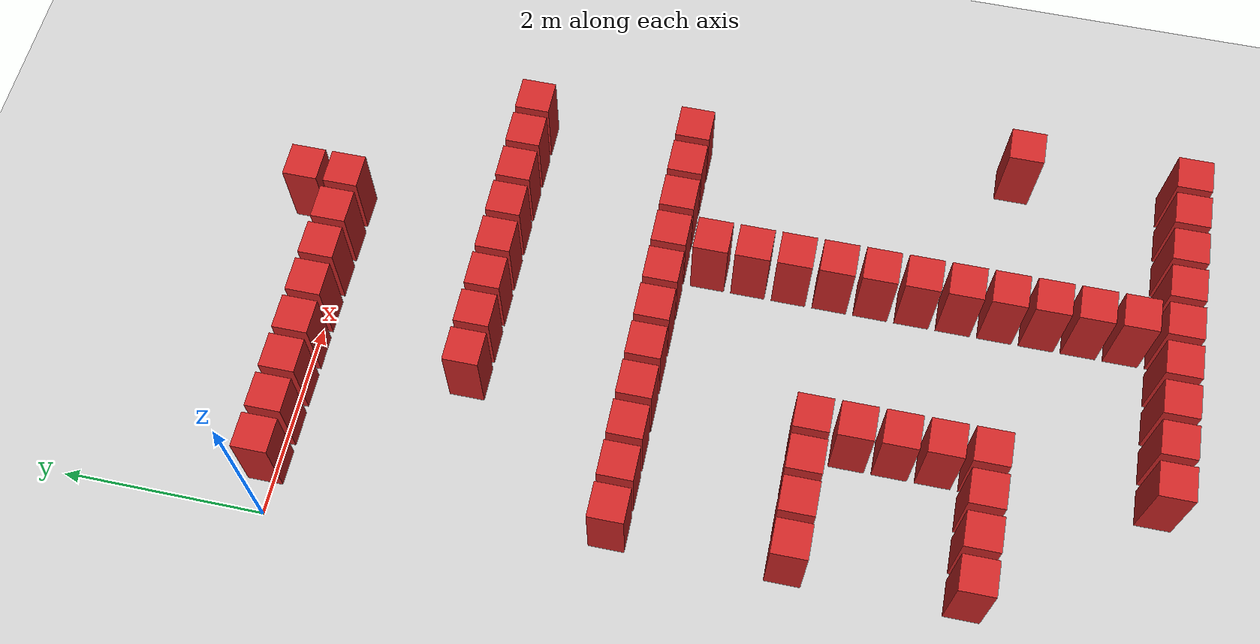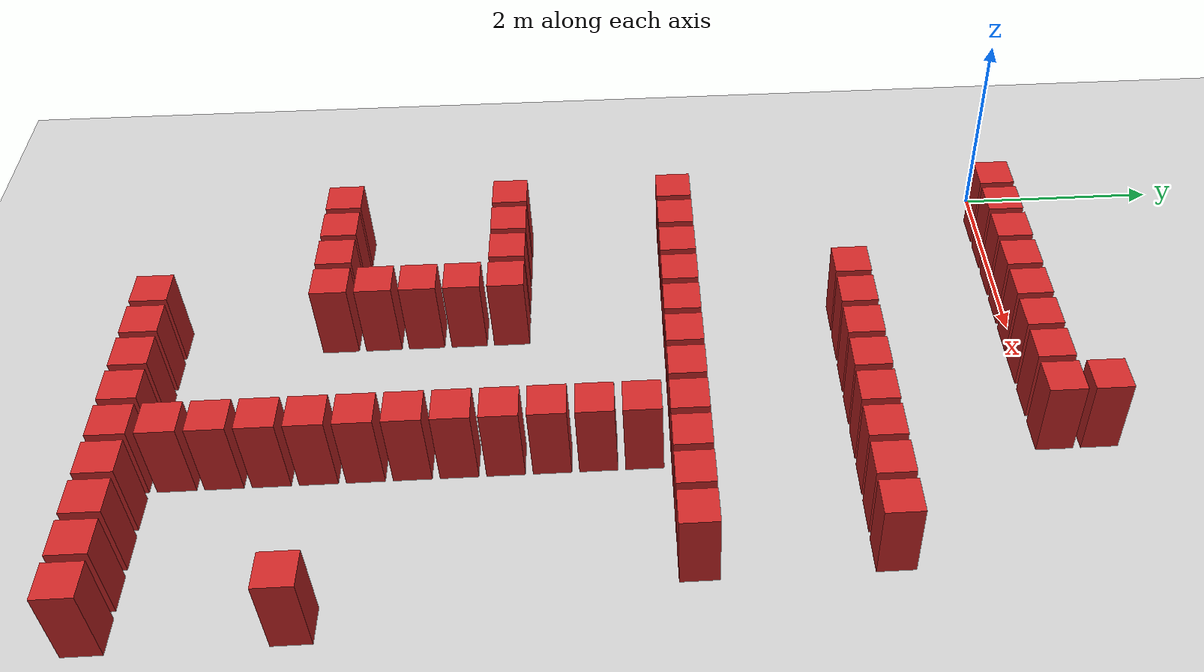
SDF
<sdf version="1.6">
 <world name="default">
  <model name="ground_plane">
   <static>1</static>
   <link name="link">
    <collision name="collision">
     <geometry><plane><normal>0 0 1</normal><size>100 100</size></plane></geometry>
     <surface><friction><ode><mu>100</mu><mu2>50</mu2></ode></friction></surface>
    </collision>
    <visual name="visual">
     <cast_shadows>0</cast_shadows>
     <geometry><plane><normal>0 0 1</normal><size>100 100</size></plane></geometry>
     <material>
      <script><uri>file://media/materials/scripts/gazebo.material</uri><name>Gazebo/Grey</name></script>
     </material>
    </visual>
   </link>
  </model>
  <model name="box_obstacle252">
   <static>0</static>
   <link name="link">
    <pose>0 0 0.1 0 -0 0</pose>
    <inertial>
     <mass>100</mass>
     <inertia>
      <ixx>0.166667</ixx>
      <ixy>0</ixy>
      <ixz>0</ixz>
      <iyy>0.166667</iyy>
      <iyz>0</iyz>
      <izz>0.166667</izz>
     </inertia>
    </inertial>
    <collision name="collision"><geometry><box><size>0.35 0.35 0.8</size></box></geometry></collision>
    <visual name="visual">
     <geometry><box><size>0.35 0.35 0.8</size></box></geometry>
     <material>
      <script><name>Gazebo/Red</name><uri>file://media/materials/scripts/gazebo.material</uri></script>
     </material>
    </visual>
   </link>
   <pose>0.499661 -6.63994 0.300001 -1e-06 1.7e-05 0.000735</pose>
  </model>
  <model name="box_obstacle253">
   <static>0</static>
   <link name="link">
    <pose>0 0 0.1 0 -0 0</pose>
    <inertial>
     <mass>100</mass>
     <inertia>
      <ixx>0.166667</ixx>
      <ixy>0</ixy>
      <ixz>0</ixz>
      <iyy>0.166667</iyy>
      <iyz>0</iyz>
      <izz>0.166667</izz>
     </inertia>
    </inertial>
    <collision name="collision"><geometry><box><size>0.35 0.35 0.8</size></box></geometry></collision>
    <visual name="visual">
     <geometry><box><size>0.35 0.35 0.8</size></box></geometry>
     <material>
      <script><name>Gazebo/Red</name><uri>file://media/materials/scripts/gazebo.material</uri></script>
     </material>
    </visual>
   </link>
   <pose>0.499661 -4.95994 0.300001 -1e-06 1.7e-05 0.000735</pose>
  </model>
  <model name="box_obstacle254">
   <static>0</static>
   <link name="link">
    <pose>0 0 0.1 0 -0 0</pose>
    <inertial>
     <mass>100</mass>
     <inertia>
      <ixx>0.166667</ixx>
      <ixy>0</ixy>
      <ixz>0</ixz>
      <iyy>0.166667</iyy>
      <iyz>0</iyz>
      <izz>0.166667</izz>
     </inertia>
    </inertial>
    <collision name="collision"><geometry><box><size>0.35 0.35 0.8</size></box></geometry></collision>
    <visual name="visual">
     <geometry><box><size>0.35 0.35 0.8</size></box></geometry>
     <material>
      <script><name>Gazebo/Red</name><uri>file://media/materials/scripts/gazebo.material</uri></script>
     </material>
    </visual>
   </link>
   <pose>0.499661 -3.27994 0.300001 -1e-06 1.7e-05 0.000735</pose>
  </model>
  <model name="box_obstacle255">
   <static>0</static>
   <link name="link">
    <pose>0 0 0.1 0 -0 0</pose>
    <inertial>
     <mass>100</mass>
     <inertia>
      <ixx>0.166667</ixx>
      <ixy>0</ixy>
      <ixz>0</ixz>
      <iyy>0.166667</iyy>
      <iyz>0</iyz>
      <izz>0.166667</izz>
     </inertia>
    </inertial>
    <collision name="collision"><geometry><box><size>0.35 0.35 0.8</size></box></geometry></collision>
    <visual name="visual">
     <geometry><box><size>0.35 0.35 0.8</size></box></geometry>
     <material>
      <script><name>Gazebo/Red</name><uri>file://media/materials/scripts/gazebo.material</uri></script>
     </material>
    </visual>
   </link>
   <pose>0.499661 0.080061 0.300001 -1e-06 1.7e-05 0.000735</pose>
  </model>
  <model name="box_obstacle258">
   <static>0</static>
   <link name="link">
    <pose>0 0 0.1 0 -0 0</pose>
    <inertial>
     <mass>100</mass>
     <inertia>
      <ixx>0.166667</ixx>
      <ixy>0</ixy>
      <ixz>0</ixz>
      <iyy>0.166667</iyy>
      <iyz>0</iyz>
      <izz>0.166667</izz>
     </inertia>
    </inertial>
    <collision name="collision"><geometry><box><size>0.35 0.35 0.8</size></box></geometry></collision>
    <visual name="visual">
     <geometry><box><size>0.35 0.35 0.8</size></box></geometry>
     <material>
      <script><name>Gazebo/Red</name><uri>file://media/materials/scripts/gazebo.material</uri></script>
     </material>
    </visual>
   </link>
   <pose>0.919661 -6.63994 0.300001 -1e-06 1.7e-05 0.000735</pose>
  </model>
  <model name="box_obstacle259">
   <static>0</static>
   <link name="link">
    <pose>0 0 0.1 0 -0 0</pose>
    <inertial>
     <mass>100</mass>
     <inertia>
      <ixx>0.166667</ixx>
      <ixy>0</ixy>
      <ixz>0</ixz>
      <iyy>0.166667</iyy>
      <iyz>0</iyz>
      <izz>0.166667</izz>
     </inertia>
    </inertial>
    <collision name="collision"><geometry><box><size>0.35 0.35 0.8</size></box></geometry></collision>
    <visual name="visual">
     <geometry><box><size>0.35 0.35 0.8</size></box></geometry>
     <material>
      <script><name>Gazebo/Red</name><uri>file://media/materials/scripts/gazebo.material</uri></script>
     </material>
    </visual>
   </link>
   <pose>0.919661 -4.95994 0.300001 -1e-06 1.7e-05 0.000735</pose>
  </model>
  <model name="box_obstacle260">
   <static>0</static>
   <link name="link">
    <pose>0 0 0.1 0 -0 0</pose>
    <inertial>
     <mass>100</mass>
     <inertia>
      <ixx>0.166667</ixx>
      <ixy>0</ixy>
      <ixz>0</ixz>
      <iyy>0.166667</iyy>
      <iyz>0</iyz>
      <izz>0.166667</izz>
     </inertia>
    </inertial>
    <collision name="collision"><geometry><box><size>0.35 0.35 0.8</size></box></geometry></collision>
    <visual name="visual">
     <geometry><box><size>0.35 0.35 0.8</size></box></geometry>
     <material>
      <script><name>Gazebo/Red</name><uri>file://media/materials/scripts/gazebo.material</uri></script>
     </material>
    </visual>
   </link>
   <pose>0.919661 -3.27994 0.300001 -1e-06 1.7e-05 0.000735</pose>
  </model>
  <model name="box_obstacle261">
   <static>0</static>
   <link name="link">
    <pose>0 0 0.1 0 -0 0</pose>
    <inertial>
     <mass>100</mass>
     <inertia>
      <ixx>0.166667</ixx>
      <ixy>0</ixy>
      <ixz>0</ixz>
      <iyy>0.166667</iyy>
      <iyz>0</iyz>
      <izz>0.166667</izz>
     </inertia>
    </inertial>
    <collision name="collision"><geometry><box><size>0.35 0.35 0.8</size></box></geometry></collision>
    <visual name="visual">
     <geometry><box><size>0.35 0.35 0.8</size></box></geometry>
     <material>
      <script><name>Gazebo/Red</name><uri>file://media/materials/scripts/gazebo.material</uri></script>
     </material>
    </visual>
   </link>
   <pose>0.919661 0.080061 0.300001 -1e-06 1.7e-05 0.000735</pose>
  </model>
  <model name="box_obstacle264">
   <static>0</static>
   <link name="link">
    <pose>0 0 0.1 0 -0 0</pose>
    <inertial>
     <mass>100</mass>
     <inertia>
      <ixx>0.166667</ixx>
      <ixy>0</ixy>
      <ixz>0</ixz>
      <iyy>0.166667</iyy>
      <iyz>0</iyz>
      <izz>0.166667</izz>
     </inertia>
    </inertial>
    <collision name="collision"><geometry><box><size>0.35 0.35 0.8</size></box></geometry></collision>
    <visual name="visual">
     <geometry><box><size>0.35 0.35 0.8</size></box></geometry>
     <material>
      <script><name>Gazebo/Red</name><uri>file://media/materials/scripts/gazebo.material</uri></script>
     </material>
    </visual>
   </link>
   <pose>1.33966 -6.63994 0.300001 -1e-06 1.7e-05 0.000735</pose>
  </model>
  <model name="box_obstacle265">
   <static>0</static>
   <link name="link">
    <pose>0 0 0.1 0 -0 0</pose>
    <inertial>
     <mass>100</mass>
     <inertia>
      <ixx>0.166667</ixx>
      <ixy>0</ixy>
      <ixz>0</ixz>
      <iyy>0.166667</iyy>
      <iyz>0</iyz>
      <izz>0.166667</izz>
     </inertia>
    </inertial>
    <collision name="collision"><geometry><box><size>0.35 0.35 0.8</size></box></geometry></collision>
    <visual name="visual">
     <geometry><box><size>0.35 0.35 0.8</size></box></geometry>
     <material>
      <script><name>Gazebo/Red</name><uri>file://media/materials/scripts/gazebo.material</uri></script>
     </material>
    </visual>
   </link>
   <pose>1.33966 -4.95994 0.300001 -1e-06 1.7e-05 0.000735</pose>
  </model>
  <model name="box_obstacle266">
   <static>0</static>
   <link name="link">
    <pose>0 0 0.1 0 -0 0</pose>
    <inertial>
     <mass>100</mass>
     <inertia>
      <ixx>0.166667</ixx>
      <ixy>0</ixy>
      <ixz>0</ixz>
      <iyy>0.166667</iyy>
      <iyz>0</iyz>
      <izz>0.166667</izz>
     </inertia>
    </inertial>
    <collision name="collision"><geometry><box><size>0.35 0.35 0.8</size></box></geometry></collision>
    <visual name="visual">
     <geometry><box><size>0.35 0.35 0.8</size></box></geometry>
     <material>
      <script><name>Gazebo/Red</name><uri>file://media/materials/scripts/gazebo.material</uri></script>
     </material>
    </visual>
   </link>
   <pose>1.33966 -3.27994 0.300001 -1e-06 1.7e-05 0.000735</pose>
  </model>
  <model name="box_obstacle267">
   <static>0</static>
   <link name="link">
    <pose>0 0 0.1 0 -0 0</pose>
    <inertial>
     <mass>100</mass>
     <inertia>
      <ixx>0.166667</ixx>
      <ixy>0</ixy>
      <ixz>0</ixz>
      <iyy>0.166667</iyy>
      <iyz>0</iyz>
      <izz>0.166667</izz>
     </inertia>
    </inertial>
    <collision name="collision"><geometry><box><size>0.35 0.35 0.8</size></box></geometry></collision>
    <visual name="visual">
     <geometry><box><size>0.35 0.35 0.8</size></box></geometry>
     <material>
      <script><name>Gazebo/Red</name><uri>file://media/materials/scripts/gazebo.material</uri></script>
     </material>
    </visual>
   </link>
   <pose>1.33966 0.080061 0.300001 -1e-06 1.7e-05 0.000735</pose>
  </model>
  <model name="box_obstacle270">
   <static>0</static>
   <link name="link">
    <pose>0 0 0.1 0 -0 0</pose>
    <inertial>
     <mass>100</mass>
     <inertia>
      <ixx>0.166667</ixx>
      <ixy>0</ixy>
      <ixz>0</ixz>
      <iyy>0.166667</iyy>
      <iyz>0</iyz>
      <izz>0.166667</izz>
     </inertia>
    </inertial>
    <collision name="collision"><geometry><box><size>0.35 0.35 0.8</size></box></geometry></collision>
    <visual name="visual">
     <geometry><box><size>0.35 0.35 0.8</size></box></geometry>
     <material>
      <script><name>Gazebo/Red</name><uri>file://media/materials/scripts/gazebo.material</uri></script>
     </material>
    </visual>
   </link>
   <pose>1.75966 -8.31994 0.300001 -1e-06 1.7e-05 0.000735</pose>
  </model>
  <model name="box_obstacle271">
   <static>0</static>
   <link name="link">
    <pose>0 0 0.1 0 -0 0</pose>
    <inertial>
     <mass>100</mass>
     <inertia>
      <ixx>0.166667</ixx>
      <ixy>0</ixy>
      <ixz>0</ixz>
      <iyy>0.166667</iyy>
      <iyz>0</iyz>
      <izz>0.166667</izz>
     </inertia>
    </inertial>
    <collision name="collision"><geometry><box><size>0.35 0.35 0.8</size></box></geometry></collision>
    <visual name="visual">
     <geometry><box><size>0.35 0.35 0.8</size></box></geometry>
     <material>
      <script><name>Gazebo/Red</name><uri>file://media/materials/scripts/gazebo.material</uri></script>
     </material>
    </visual>
   </link>
   <pose>1.75966 -6.63994 0.300001 -1e-06 1.7e-05 0.000735</pose>
  </model>
  <model name="box_obstacle272">
   <static>0</static>
   <link name="link">
    <pose>0 0 0.1 0 -0 0</pose>
    <inertial>
     <mass>100</mass>
     <inertia>
      <ixx>0.166667</ixx>
      <ixy>0</ixy>
      <ixz>0</ixz>
      <iyy>0.166667</iyy>
      <iyz>0</iyz>
      <izz>0.166667</izz>
     </inertia>
    </inertial>
    <collision name="collision"><geometry><box><size>0.35 0.35 0.8</size></box></geometry></collision>
    <visual name="visual">
     <geometry><box><size>0.35 0.35 0.8</size></box></geometry>
     <material>
      <script><name>Gazebo/Red</name><uri>file://media/materials/scripts/gazebo.material</uri></script>
     </material>
    </visual>
   </link>
   <pose>1.75966 -6.21994 0.300001 -1e-06 1.7e-05 0.000735</pose>
  </model>
  <model name="box_obstacle273">
   <static>0</static>
   <link name="link">
    <pose>0 0 0.1 0 -0 0</pose>
    <inertial>
     <mass>100</mass>
     <inertia>
      <ixx>0.166667</ixx>
      <ixy>0</ixy>
      <ixz>0</ixz>
      <iyy>0.166667</iyy>
      <iyz>0</iyz>
      <izz>0.166667</izz>
     </inertia>
    </inertial>
    <collision name="collision"><geometry><box><size>0.35 0.35 0.8</size></box></geometry></collision>
    <visual name="visual">
     <geometry><box><size>0.35 0.35 0.8</size></box></geometry>
     <material>
      <script><name>Gazebo/Red</name><uri>file://media/materials/scripts/gazebo.material</uri></script>
     </material>
    </visual>
   </link>
   <pose>1.75966 -5.79994 0.300001 -1e-06 1.7e-05 0.000735</pose>
  </model>
  <model name="box_obstacle274">
   <static>0</static>
   <link name="link">
    <pose>0 0 0.1 0 -0 0</pose>
    <inertial>
     <mass>100</mass>
     <inertia>
      <ixx>0.166667</ixx>
      <ixy>0</ixy>
      <ixz>0</ixz>
      <iyy>0.166667</iyy>
      <iyz>0</iyz>
      <izz>0.166667</izz>
     </inertia>
    </inertial>
    <collision name="collision"><geometry><box><size>0.35 0.35 0.8</size></box></geometry></collision>
    <visual name="visual">
     <geometry><box><size>0.35 0.35 0.8</size></box></geometry>
     <material>
      <script><name>Gazebo/Red</name><uri>file://media/materials/scripts/gazebo.material</uri></script>
     </material>
    </visual>
   </link>
   <pose>1.75966 -5.37994 0.300001 -1e-06 1.7e-05 0.000735</pose>
  </model>
  <model name="box_obstacle275">
   <static>0</static>
   <link name="link">
    <pose>0 0 0.1 0 -0 0</pose>
    <inertial>
     <mass>100</mass>
     <inertia>
      <ixx>0.166667</ixx>
      <ixy>0</ixy>
      <ixz>0</ixz>
      <iyy>0.166667</iyy>
      <iyz>0</iyz>
      <izz>0.166667</izz>
     </inertia>
    </inertial>
    <collision name="collision"><geometry><box><size>0.35 0.35 0.8</size></box></geometry></collision>
    <visual name="visual">
     <geometry><box><size>0.35 0.35 0.8</size></box></geometry>
     <material>
      <script><name>Gazebo/Red</name><uri>file://media/materials/scripts/gazebo.material</uri></script>
     </material>
    </visual>
   </link>
   <pose>1.75966 -4.95994 0.300001 -1e-06 1.7e-05 0.000735</pose>
  </model>
  <model name="box_obstacle276">
   <static>0</static>
   <link name="link">
    <pose>0 0 0.1 0 -0 0</pose>
    <inertial>
     <mass>100</mass>
     <inertia>
      <ixx>0.166667</ixx>
      <ixy>0</ixy>
      <ixz>0</ixz>
      <iyy>0.166667</iyy>
      <iyz>0</iyz>
      <izz>0.166667</izz>
     </inertia>
    </inertial>
    <collision name="collision"><geometry><box><size>0.35 0.35 0.8</size></box></geometry></collision>
    <visual name="visual">
     <geometry><box><size>0.35 0.35 0.8</size></box></geometry>
     <material>
      <script><name>Gazebo/Red</name><uri>file://media/materials/scripts/gazebo.material</uri></script>
     </material>
    </visual>
   </link>
   <pose>1.75966 -3.27994 0.300001 -1e-06 1.7e-05 0.000735</pose>
  </model>
  <model name="box_obstacle277">
   <static>0</static>
   <link name="link">
    <pose>0 0 0.1 0 -0 0</pose>
    <inertial>
     <mass>100</mass>
     <inertia>
      <ixx>0.166667</ixx>
      <ixy>0</ixy>
      <ixz>0</ixz>
      <iyy>0.166667</iyy>
      <iyz>0</iyz>
      <izz>0.166667</izz>
     </inertia>
    </inertial>
    <collision name="collision"><geometry><box><size>0.35 0.35 0.8</size></box></geometry></collision>
    <visual name="visual">
     <geometry><box><size>0.35 0.35 0.8</size></box></geometry>
     <material>
      <script><name>Gazebo/Red</name><uri>file://media/materials/scripts/gazebo.material</uri></script>
     </material>
    </visual>
   </link>
   <pose>1.75966 -1.59994 0.300001 -1e-06 1.7e-05 0.000735</pose>
  </model>
  <model name="box_obstacle278">
   <static>0</static>
   <link name="link">
    <pose>0 0 0.1 0 -0 0</pose>
    <inertial>
     <mass>100</mass>
     <inertia>
      <ixx>0.166667</ixx>
      <ixy>0</ixy>
      <ixz>0</ixz>
      <iyy>0.166667</iyy>
      <iyz>0</iyz>
      <izz>0.166667</izz>
     </inertia>
    </inertial>
    <collision name="collision"><geometry><box><size>0.35 0.35 0.8</size></box></geometry></collision>
    <visual name="visual">
     <geometry><box><size>0.35 0.35 0.8</size></box></geometry>
     <material>
      <script><name>Gazebo/Red</name><uri>file://media/materials/scripts/gazebo.material</uri></script>
     </material>
    </visual>
   </link>
   <pose>1.75966 0.080061 0.300001 -1e-06 1.7e-05 0.000735</pose>
  </model>
  <model name="box_obstacle293">
   <static>0</static>
   <link name="link">
    <pose>0 0 0.1 0 -0 0</pose>
    <inertial>
     <mass>100</mass>
     <inertia>
      <ixx>0.166667</ixx>
      <ixy>0</ixy>
      <ixz>0</ixz>
      <iyy>0.166667</iyy>
      <iyz>0</iyz>
      <izz>0.166667</izz>
     </inertia>
    </inertial>
    <collision name="collision"><geometry><box><size>0.35 0.35 0.8</size></box></geometry></collision>
    <visual name="visual">
     <geometry><box><size>0.35 0.35 0.8</size></box></geometry>
     <material>
      <script><name>Gazebo/Red</name><uri>file://media/materials/scripts/gazebo.material</uri></script>
     </material>
    </visual>
   </link>
   <pose>2.17966 -8.31994 0.300001 -1e-06 1.7e-05 0.000735</pose>
  </model>
  <model name="box_obstacle294">
   <static>0</static>
   <link name="link">
    <pose>0 0 0.1 0 -0 0</pose>
    <inertial>
     <mass>100</mass>
     <inertia>
      <ixx>0.166667</ixx>
      <ixy>0</ixy>
      <ixz>0</ixz>
      <iyy>0.166667</iyy>
      <iyz>0</iyz>
      <izz>0.166667</izz>
     </inertia>
    </inertial>
    <collision name="collision"><geometry><box><size>0.35 0.35 0.8</size></box></geometry></collision>
    <visual name="visual">
     <geometry><box><size>0.35 0.35 0.8</size></box></geometry>
     <material>
      <script><name>Gazebo/Red</name><uri>file://media/materials/scripts/gazebo.material</uri></script>
     </material>
    </visual>
   </link>
   <pose>2.17966 -3.27994 0.300001 -1e-06 1.7e-05 0.000735</pose>
  </model>
  <model name="box_obstacle295">
   <static>0</static>
   <link name="link">
    <pose>0 0 0.1 0 -0 0</pose>
    <inertial>
     <mass>100</mass>
     <inertia>
      <ixx>0.166667</ixx>
      <ixy>0</ixy>
      <ixz>0</ixz>
      <iyy>0.166667</iyy>
      <iyz>0</iyz>
      <izz>0.166667</izz>
     </inertia>
    </inertial>
    <collision name="collision"><geometry><box><size>0.35 0.35 0.8</size></box></geometry></collision>
    <visual name="visual">
     <geometry><box><size>0.35 0.35 0.8</size></box></geometry>
     <material>
      <script><name>Gazebo/Red</name><uri>file://media/materials/scripts/gazebo.material</uri></script>
     </material>
    </visual>
   </link>
   <pose>2.17966 -1.59994 0.300001 -1e-06 1.7e-05 0.000735</pose>
  </model>
  <model name="box_obstacle296">
   <static>0</static>
   <link name="link">
    <pose>0 0 0.1 0 -0 0</pose>
    <inertial>
     <mass>100</mass>
     <inertia>
      <ixx>0.166667</ixx>
      <ixy>0</ixy>
      <ixz>0</ixz>
      <iyy>0.166667</iyy>
      <iyz>0</iyz>
      <izz>0.166667</izz>
     </inertia>
    </inertial>
    <collision name="collision"><geometry><box><size>0.35 0.35 0.8</size></box></geometry></collision>
    <visual name="visual">
     <geometry><box><size>0.35 0.35 0.8</size></box></geometry>
     <material>
      <script><name>Gazebo/Red</name><uri>file://media/materials/scripts/gazebo.material</uri></script>
     </material>
    </visual>
   </link>
   <pose>2.17966 0.080061 0.300001 -1e-06 1.7e-05 0.000735</pose>
  </model>
  <model name="box_obstacle300">
   <static>0</static>
   <link name="link">
    <pose>0 0 0.1 0 -0 0</pose>
    <inertial>
     <mass>100</mass>
     <inertia>
      <ixx>0.166667</ixx>
      <ixy>0</ixy>
      <ixz>0</ixz>
      <iyy>0.166667</iyy>
      <iyz>0</iyz>
      <izz>0.166667</izz>
     </inertia>
    </inertial>
    <collision name="collision"><geometry><box><size>0.35 0.35 0.8</size></box></geometry></collision>
    <visual name="visual">
     <geometry><box><size>0.35 0.35 0.8</size></box></geometry>
     <material>
      <script><name>Gazebo/Red</name><uri>file://media/materials/scripts/gazebo.material</uri></script>
     </material>
    </visual>
   </link>
   <pose>2.59966 -8.31994 0.300001 -1e-06 1.7e-05 0.000735</pose>
  </model>
  <model name="box_obstacle301">
   <static>0</static>
   <link name="link">
    <pose>0 0 0.1 0 -0 0</pose>
    <inertial>
     <mass>100</mass>
     <inertia>
      <ixx>0.166667</ixx>
      <ixy>0</ixy>
      <ixz>0</ixz>
      <iyy>0.166667</iyy>
      <iyz>0</iyz>
      <izz>0.166667</izz>
     </inertia>
    </inertial>
    <collision name="collision"><geometry><box><size>0.35 0.35 0.8</size></box></geometry></collision>
    <visual name="visual">
     <geometry><box><size>0.35 0.35 0.8</size></box></geometry>
     <material>
      <script><name>Gazebo/Red</name><uri>file://media/materials/scripts/gazebo.material</uri></script>
     </material>
    </visual>
   </link>
   <pose>2.59966 -3.27994 0.300001 -1e-06 1.7e-05 0.000735</pose>
  </model>
  <model name="box_obstacle302">
   <static>0</static>
   <link name="link">
    <pose>0 0 0.1 0 -0 0</pose>
    <inertial>
     <mass>100</mass>
     <inertia>
      <ixx>0.166667</ixx>
      <ixy>0</ixy>
      <ixz>0</ixz>
      <iyy>0.166667</iyy>
      <iyz>0</iyz>
      <izz>0.166667</izz>
     </inertia>
    </inertial>
    <collision name="collision"><geometry><box><size>0.35 0.35 0.8</size></box></geometry></collision>
    <visual name="visual">
     <geometry><box><size>0.35 0.35 0.8</size></box></geometry>
     <material>
      <script><name>Gazebo/Red</name><uri>file://media/materials/scripts/gazebo.material</uri></script>
     </material>
    </visual>
   </link>
   <pose>2.59966 -1.59994 0.300001 -1e-06 1.7e-05 0.000735</pose>
  </model>
  <model name="box_obstacle303">
   <static>0</static>
   <link name="link">
    <pose>0 0 0.1 0 -0 0</pose>
    <inertial>
     <mass>100</mass>
     <inertia>
      <ixx>0.166667</ixx>
      <ixy>0</ixy>
      <ixz>0</ixz>
      <iyy>0.166667</iyy>
      <iyz>0</iyz>
      <izz>0.166667</izz>
     </inertia>
    </inertial>
    <collision name="collision"><geometry><box><size>0.35 0.35 0.8</size></box></geometry></collision>
    <visual name="visual">
     <geometry><box><size>0.35 0.35 0.8</size></box></geometry>
     <material>
      <script><name>Gazebo/Red</name><uri>file://media/materials/scripts/gazebo.material</uri></script>
     </material>
    </visual>
   </link>
   <pose>2.59966 0.080061 0.300001 -1e-06 1.7e-05 0.000735</pose>
  </model>
  <model name="box_obstacle307">
   <static>0</static>
   <link name="link">
    <pose>0 0 0.1 0 -0 0</pose>
    <inertial>
     <mass>100</mass>
     <inertia>
      <ixx>0.166667</ixx>
      <ixy>0</ixy>
      <ixz>0</ixz>
      <iyy>0.166667</iyy>
      <iyz>0</iyz>
      <izz>0.166667</izz>
     </inertia>
    </inertial>
    <collision name="collision"><geometry><box><size>0.35 0.35 0.8</size></box></geometry></collision>
    <visual name="visual">
     <geometry><box><size>0.35 0.35 0.8</size></box></geometry>
     <material>
      <script><name>Gazebo/Red</name><uri>file://media/materials/scripts/gazebo.material</uri></script>
     </material>
    </visual>
   </link>
   <pose>3.01966 -8.31994 0.300001 -1e-06 1.7e-05 0.000735</pose>
  </model>
  <model name="box_obstacle308">
   <static>0</static>
   <link name="link">
    <pose>0 0 0.1 0 -0 0</pose>
    <inertial>
     <mass>100</mass>
     <inertia>
      <ixx>0.166667</ixx>
      <ixy>0</ixy>
      <ixz>0</ixz>
      <iyy>0.166667</iyy>
      <iyz>0</iyz>
      <izz>0.166667</izz>
     </inertia>
    </inertial>
    <collision name="collision"><geometry><box><size>0.35 0.35 0.8</size></box></geometry></collision>
    <visual name="visual">
     <geometry><box><size>0.35 0.35 0.8</size></box></geometry>
     <material>
      <script><name>Gazebo/Red</name><uri>file://media/materials/scripts/gazebo.material</uri></script>
     </material>
    </visual>
   </link>
   <pose>3.01966 -3.27994 0.300001 -1e-06 1.7e-05 0.000735</pose>
  </model>
  <model name="box_obstacle309">
   <static>0</static>
   <link name="link">
    <pose>0 0 0.1 0 -0 0</pose>
    <inertial>
     <mass>100</mass>
     <inertia>
      <ixx>0.166667</ixx>
      <ixy>0</ixy>
      <ixz>0</ixz>
      <iyy>0.166667</iyy>
      <iyz>0</iyz>
      <izz>0.166667</izz>
     </inertia>
    </inertial>
    <collision name="collision"><geometry><box><size>0.35 0.35 0.8</size></box></geometry></collision>
    <visual name="visual">
     <geometry><box><size>0.35 0.35 0.8</size></box></geometry>
     <material>
      <script><name>Gazebo/Red</name><uri>file://media/materials/scripts/gazebo.material</uri></script>
     </material>
    </visual>
   </link>
   <pose>3.01966 -1.59994 0.300001 -1e-06 1.7e-05 0.000735</pose>
  </model>
  <model name="box_obstacle310">
   <static>0</static>
   <link name="link">
    <pose>0 0 0.1 0 -0 0</pose>
    <inertial>
     <mass>100</mass>
     <inertia>
      <ixx>0.166667</ixx>
      <ixy>0</ixy>
      <ixz>0</ixz>
      <iyy>0.166667</iyy>
      <iyz>0</iyz>
      <izz>0.166667</izz>
     </inertia>
    </inertial>
    <collision name="collision"><geometry><box><size>0.35 0.35 0.8</size></box></geometry></collision>
    <visual name="visual">
     <geometry><box><size>0.35 0.35 0.8</size></box></geometry>
     <material>
      <script><name>Gazebo/Red</name><uri>file://media/materials/scripts/gazebo.material</uri></script>
     </material>
    </visual>
   </link>
   <pose>3.01966 0.080061 0.300001 -1e-06 1.7e-05 0.000735</pose>
  </model>
  <model name="box_obstacle314">
   <static>0</static>
   <link name="link">
    <pose>0 0 0.1 0 -0 0</pose>
    <inertial>
     <mass>100</mass>
     <inertia>
      <ixx>0.166667</ixx>
      <ixy>0</ixy>
      <ixz>0</ixz>
      <iyy>0.166667</iyy>
      <iyz>0</iyz>
      <izz>0.166667</izz>
     </inertia>
    </inertial>
    <collision name="collision"><geometry><box><size>0.35 0.35 0.8</size></box></geometry></collision>
    <visual name="visual">
     <geometry><box><size>0.35 0.35 0.8</size></box></geometry>
     <material>
      <script><name>Gazebo/Red</name><uri>file://media/materials/scripts/gazebo.material</uri></script>
     </material>
    </visual>
   </link>
   <pose>3.43966 -8.31994 0.300001 -1e-06 1.7e-05 0.000735</pose>
  </model>
  <model name="box_obstacle315">
   <static>0</static>
   <link name="link">
    <pose>0 0 0.1 0 -0 0</pose>
    <inertial>
     <mass>100</mass>
     <inertia>
      <ixx>0.166667</ixx>
      <ixy>0</ixy>
      <ixz>0</ixz>
      <iyy>0.166667</iyy>
      <iyz>0</iyz>
      <izz>0.166667</izz>
     </inertia>
    </inertial>
    <collision name="collision"><geometry><box><size>0.35 0.35 0.8</size></box></geometry></collision>
    <visual name="visual">
     <geometry><box><size>0.35 0.35 0.8</size></box></geometry>
     <material>
      <script><name>Gazebo/Red</name><uri>file://media/materials/scripts/gazebo.material</uri></script>
     </material>
    </visual>
   </link>
   <pose>3.43966 -7.89994 0.300001 -1e-06 1.7e-05 0.000735</pose>
  </model>
  <model name="box_obstacle316">
   <static>0</static>
   <link name="link">
    <pose>0 0 0.1 0 -0 0</pose>
    <inertial>
     <mass>100</mass>
     <inertia>
      <ixx>0.166667</ixx>
      <ixy>0</ixy>
      <ixz>0</ixz>
      <iyy>0.166667</iyy>
      <iyz>0</iyz>
      <izz>0.166667</izz>
     </inertia>
    </inertial>
    <collision name="collision"><geometry><box><size>0.35 0.35 0.8</size></box></geometry></collision>
    <visual name="visual">
     <geometry><box><size>0.35 0.35 0.8</size></box></geometry>
     <material>
      <script><name>Gazebo/Red</name><uri>file://media/materials/scripts/gazebo.material</uri></script>
     </material>
    </visual>
   </link>
   <pose>3.43966 -7.47994 0.300001 -1e-06 1.7e-05 0.000735</pose>
  </model>
  <model name="box_obstacle317">
   <static>0</static>
   <link name="link">
    <pose>0 0 0.1 0 -0 0</pose>
    <inertial>
     <mass>100</mass>
     <inertia>
      <ixx>0.166667</ixx>
      <ixy>0</ixy>
      <ixz>0</ixz>
      <iyy>0.166667</iyy>
      <iyz>0</iyz>
      <izz>0.166667</izz>
     </inertia>
    </inertial>
    <collision name="collision"><geometry><box><size>0.35 0.35 0.8</size></box></geometry></collision>
    <visual name="visual">
     <geometry><box><size>0.35 0.35 0.8</size></box></geometry>
     <material>
      <script><name>Gazebo/Red</name><uri>file://media/materials/scripts/gazebo.material</uri></script>
     </material>
    </visual>
   </link>
   <pose>3.43966 -7.05994 0.300001 -1e-06 1.7e-05 0.000735</pose>
  </model>
  <model name="box_obstacle318">
   <static>0</static>
   <link name="link">
    <pose>0 0 0.1 0 -0 0</pose>
    <inertial>
     <mass>100</mass>
     <inertia>
      <ixx>0.166667</ixx>
      <ixy>0</ixy>
      <ixz>0</ixz>
      <iyy>0.166667</iyy>
      <iyz>0</iyz>
      <izz>0.166667</izz>
     </inertia>
    </inertial>
    <collision name="collision"><geometry><box><size>0.35 0.35 0.8</size></box></geometry></collision>
    <visual name="visual">
     <geometry><box><size>0.35 0.35 0.8</size></box></geometry>
     <material>
      <script><name>Gazebo/Red</name><uri>file://media/materials/scripts/gazebo.material</uri></script>
     </material>
    </visual>
   </link>
   <pose>3.43966 -6.63994 0.300001 -1e-06 1.7e-05 0.000735</pose>
  </model>
  <model name="box_obstacle319">
   <static>0</static>
   <link name="link">
    <pose>0 0 0.1 0 -0 0</pose>
    <inertial>
     <mass>100</mass>
     <inertia>
      <ixx>0.166667</ixx>
      <ixy>0</ixy>
      <ixz>0</ixz>
      <iyy>0.166667</iyy>
      <iyz>0</iyz>
      <izz>0.166667</izz>
     </inertia>
    </inertial>
    <collision name="collision"><geometry><box><size>0.35 0.35 0.8</size></box></geometry></collision>
    <visual name="visual">
     <geometry><box><size>0.35 0.35 0.8</size></box></geometry>
     <material>
      <script><name>Gazebo/Red</name><uri>file://media/materials/scripts/gazebo.material</uri></script>
     </material>
    </visual>
   </link>
   <pose>3.43966 -6.21994 0.300001 -1e-06 1.7e-05 0.000735</pose>
  </model>
  <model name="box_obstacle320">
   <static>0</static>
   <link name="link">
    <pose>0 0 0.1 0 -0 0</pose>
    <inertial>
     <mass>100</mass>
     <inertia>
      <ixx>0.166667</ixx>
      <ixy>0</ixy>
      <ixz>0</ixz>
      <iyy>0.166667</iyy>
      <iyz>0</iyz>
      <izz>0.166667</izz>
     </inertia>
    </inertial>
    <collision name="collision"><geometry><box><size>0.35 0.35 0.8</size></box></geometry></collision>
    <visual name="visual">
     <geometry><box><size>0.35 0.35 0.8</size></box></geometry>
     <material>
      <script><name>Gazebo/Red</name><uri>file://media/materials/scripts/gazebo.material</uri></script>
     </material>
    </visual>
   </link>
   <pose>3.43966 -5.79994 0.300001 -1e-06 1.7e-05 0.000735</pose>
  </model>
  <model name="box_obstacle321">
   <static>0</static>
   <link name="link">
    <pose>0 0 0.1 0 -0 0</pose>
    <inertial>
     <mass>100</mass>
     <inertia>
      <ixx>0.166667</ixx>
      <ixy>0</ixy>
      <ixz>0</ixz>
      <iyy>0.166667</iyy>
      <iyz>0</iyz>
      <izz>0.166667</izz>
     </inertia>
    </inertial>
    <collision name="collision"><geometry><box><size>0.35 0.35 0.8</size></box></geometry></collision>
    <visual name="visual">
     <geometry><box><size>0.35 0.35 0.8</size></box></geometry>
     <material>
      <script><name>Gazebo/Red</name><uri>file://media/materials/scripts/gazebo.material</uri></script>
     </material>
    </visual>
   </link>
   <pose>3.43966 -5.37994 0.300001 -1e-06 1.7e-05 0.000735</pose>
  </model>
  <model name="box_obstacle322">
   <static>0</static>
   <link name="link">
    <pose>0 0 0.1 0 -0 0</pose>
    <inertial>
     <mass>100</mass>
     <inertia>
      <ixx>0.166667</ixx>
      <ixy>0</ixy>
      <ixz>0</ixz>
      <iyy>0.166667</iyy>
      <iyz>0</iyz>
      <izz>0.166667</izz>
     </inertia>
    </inertial>
    <collision name="collision"><geometry><box><size>0.35 0.35 0.8</size></box></geometry></collision>
    <visual name="visual">
     <geometry><box><size>0.35 0.35 0.8</size></box></geometry>
     <material>
      <script><name>Gazebo/Red</name><uri>file://media/materials/scripts/gazebo.material</uri></script>
     </material>
    </visual>
   </link>
   <pose>3.43966 -4.95994 0.300001 -1e-06 1.7e-05 0.000735</pose>
  </model>
  <model name="box_obstacle323">
   <static>0</static>
   <link name="link">
    <pose>0 0 0.1 0 -0 0</pose>
    <inertial>
     <mass>100</mass>
     <inertia>
      <ixx>0.166667</ixx>
      <ixy>0</ixy>
      <ixz>0</ixz>
      <iyy>0.166667</iyy>
      <iyz>0</iyz>
      <izz>0.166667</izz>
     </inertia>
    </inertial>
    <collision name="collision"><geometry><box><size>0.35 0.35 0.8</size></box></geometry></collision>
    <visual name="visual">
     <geometry><box><size>0.35 0.35 0.8</size></box></geometry>
     <material>
      <script><name>Gazebo/Red</name><uri>file://media/materials/scripts/gazebo.material</uri></script>
     </material>
    </visual>
   </link>
   <pose>3.43966 -4.53994 0.300001 -1e-06 1.7e-05 0.000735</pose>
  </model>
  <model name="box_obstacle324">
   <static>0</static>
   <link name="link">
    <pose>0 0 0.1 0 -0 0</pose>
    <inertial>
     <mass>100</mass>
     <inertia>
      <ixx>0.166667</ixx>
      <ixy>0</ixy>
      <ixz>0</ixz>
      <iyy>0.166667</iyy>
      <iyz>0</iyz>
      <izz>0.166667</izz>
     </inertia>
    </inertial>
    <collision name="collision"><geometry><box><size>0.35 0.35 0.8</size></box></geometry></collision>
    <visual name="visual">
     <geometry><box><size>0.35 0.35 0.8</size></box></geometry>
     <material>
      <script><name>Gazebo/Red</name><uri>file://media/materials/scripts/gazebo.material</uri></script>
     </material>
    </visual>
   </link>
   <pose>3.43966 -4.11994 0.300001 -1e-06 1.7e-05 0.000735</pose>
  </model>
  <model name="box_obstacle325">
   <static>0</static>
   <link name="link">
    <pose>0 0 0.1 0 -0 0</pose>
    <inertial>
     <mass>100</mass>
     <inertia>
      <ixx>0.166667</ixx>
      <ixy>0</ixy>
      <ixz>0</ixz>
      <iyy>0.166667</iyy>
      <iyz>0</iyz>
      <izz>0.166667</izz>
     </inertia>
    </inertial>
    <collision name="collision"><geometry><box><size>0.35 0.35 0.8</size></box></geometry></collision>
    <visual name="visual">
     <geometry><box><size>0.35 0.35 0.8</size></box></geometry>
     <material>
      <script><name>Gazebo/Red</name><uri>file://media/materials/scripts/gazebo.material</uri></script>
     </material>
    </visual>
   </link>
   <pose>3.43966 -3.69994 0.300001 -1e-06 1.7e-05 0.000735</pose>
  </model>
  <model name="box_obstacle326">
   <static>0</static>
   <link name="link">
    <pose>0 0 0.1 0 -0 0</pose>
    <inertial>
     <mass>100</mass>
     <inertia>
      <ixx>0.166667</ixx>
      <ixy>0</ixy>
      <ixz>0</ixz>
      <iyy>0.166667</iyy>
      <iyz>0</iyz>
      <izz>0.166667</izz>
     </inertia>
    </inertial>
    <collision name="collision"><geometry><box><size>0.35 0.35 0.8</size></box></geometry></collision>
    <visual name="visual">
     <geometry><box><size>0.35 0.35 0.8</size></box></geometry>
     <material>
      <script><name>Gazebo/Red</name><uri>file://media/materials/scripts/gazebo.material</uri></script>
     </material>
    </visual>
   </link>
   <pose>3.43966 -3.27994 0.300001 -1e-06 1.7e-05 0.000735</pose>
  </model>
  <model name="box_obstacle327">
   <static>0</static>
   <link name="link">
    <pose>0 0 0.1 0 -0 0</pose>
    <inertial>
     <mass>100</mass>
     <inertia>
      <ixx>0.166667</ixx>
      <ixy>0</ixy>
      <ixz>0</ixz>
      <iyy>0.166667</iyy>
      <iyz>0</iyz>
      <izz>0.166667</izz>
     </inertia>
    </inertial>
    <collision name="collision"><geometry><box><size>0.35 0.35 0.8</size></box></geometry></collision>
    <visual name="visual">
     <geometry><box><size>0.35 0.35 0.8</size></box></geometry>
     <material>
      <script><name>Gazebo/Red</name><uri>file://media/materials/scripts/gazebo.material</uri></script>
     </material>
    </visual>
   </link>
   <pose>3.43966 -1.59994 0.300001 -1e-06 1.7e-05 0.000735</pose>
  </model>
  <model name="box_obstacle328">
   <static>0</static>
   <link name="link">
    <pose>0 0 0.1 0 -0 0</pose>
    <inertial>
     <mass>100</mass>
     <inertia>
      <ixx>0.166667</ixx>
      <ixy>0</ixy>
      <ixz>0</ixz>
      <iyy>0.166667</iyy>
      <iyz>0</iyz>
      <izz>0.166667</izz>
     </inertia>
    </inertial>
    <collision name="collision"><geometry><box><size>0.35 0.35 0.8</size></box></geometry></collision>
    <visual name="visual">
     <geometry><box><size>0.35 0.35 0.8</size></box></geometry>
     <material>
      <script><name>Gazebo/Red</name><uri>file://media/materials/scripts/gazebo.material</uri></script>
     </material>
    </visual>
   </link>
   <pose>3.43966 0.080061 0.300001 -1e-06 1.7e-05 0.000735</pose>
  </model>
  <model name="box_obstacle329">
   <static>0</static>
   <link name="link">
    <pose>0 0 0.1 0 -0 0</pose>
    <inertial>
     <mass>100</mass>
     <inertia>
      <ixx>0.166667</ixx>
      <ixy>0</ixy>
      <ixz>0</ixz>
      <iyy>0.166667</iyy>
      <iyz>0</iyz>
      <izz>0.166667</izz>
     </inertia>
    </inertial>
    <collision name="collision"><geometry><box><size>0.35 0.35 0.8</size></box></geometry></collision>
    <visual name="visual">
     <geometry><box><size>0.35 0.35 0.8</size></box></geometry>
     <material>
      <script><name>Gazebo/Red</name><uri>file://media/materials/scripts/gazebo.material</uri></script>
     </material>
    </visual>
   </link>
   <pose>3.43966 0.500061 0.300001 -1e-06 1.7e-05 0.000735</pose>
  </model>
  <model name="box_obstacle340">
   <static>0</static>
   <link name="link">
    <pose>0 0 0.1 0 -0 0</pose>
    <inertial>
     <mass>100</mass>
     <inertia>
      <ixx>0.166667</ixx>
      <ixy>0</ixy>
      <ixz>0</ixz>
      <iyy>0.166667</iyy>
      <iyz>0</iyz>
      <izz>0.166667</izz>
     </inertia>
    </inertial>
    <collision name="collision"><geometry><box><size>0.35 0.35 0.8</size></box></geometry></collision>
    <visual name="visual">
     <geometry><box><size>0.35 0.35 0.8</size></box></geometry>
     <material>
      <script><name>Gazebo/Red</name><uri>file://media/materials/scripts/gazebo.material</uri></script>
     </material>
    </visual>
   </link>
   <pose>3.85966 -8.31994 0.300001 -1e-06 1.7e-05 0.000735</pose>
  </model>
  <model name="box_obstacle341">
   <static>0</static>
   <link name="link">
    <pose>0 0 0.1 0 -0 0</pose>
    <inertial>
     <mass>100</mass>
     <inertia>
      <ixx>0.166667</ixx>
      <ixy>0</ixy>
      <ixz>0</ixz>
      <iyy>0.166667</iyy>
      <iyz>0</iyz>
      <izz>0.166667</izz>
     </inertia>
    </inertial>
    <collision name="collision"><geometry><box><size>0.35 0.35 0.8</size></box></geometry></collision>
    <visual name="visual">
     <geometry><box><size>0.35 0.35 0.8</size></box></geometry>
     <material>
      <script><name>Gazebo/Red</name><uri>file://media/materials/scripts/gazebo.material</uri></script>
     </material>
    </visual>
   </link>
   <pose>3.85966 -3.27994 0.300001 -1e-06 1.7e-05 0.000735</pose>
  </model>
  <model name="box_obstacle342">
   <static>0</static>
   <link name="link">
    <pose>0 0 0.1 0 -0 0</pose>
    <inertial>
     <mass>100</mass>
     <inertia>
      <ixx>0.166667</ixx>
      <ixy>0</ixy>
      <ixz>0</ixz>
      <iyy>0.166667</iyy>
      <iyz>0</iyz>
      <izz>0.166667</izz>
     </inertia>
    </inertial>
    <collision name="collision"><geometry><box><size>0.35 0.35 0.8</size></box></geometry></collision>
    <visual name="visual">
     <geometry><box><size>0.35 0.35 0.8</size></box></geometry>
     <material>
      <script><name>Gazebo/Red</name><uri>file://media/materials/scripts/gazebo.material</uri></script>
     </material>
    </visual>
   </link>
   <pose>3.85966 -1.59994 0.300001 -1e-06 1.7e-05 0.000735</pose>
  </model>
  <model name="box_obstacle346">
   <static>0</static>
   <link name="link">
    <pose>0 0 0.1 0 -0 0</pose>
    <inertial>
     <mass>100</mass>
     <inertia>
      <ixx>0.166667</ixx>
      <ixy>0</ixy>
      <ixz>0</ixz>
      <iyy>0.166667</iyy>
      <iyz>0</iyz>
      <izz>0.166667</izz>
     </inertia>
    </inertial>
    <collision name="collision"><geometry><box><size>0.35 0.35 0.8</size></box></geometry></collision>
    <visual name="visual">
     <geometry><box><size>0.35 0.35 0.8</size></box></geometry>
     <material>
      <script><name>Gazebo/Red</name><uri>file://media/materials/scripts/gazebo.material</uri></script>
     </material>
    </visual>
   </link>
   <pose>4.27966 -8.31994 0.300001 -1e-06 1.7e-05 0.000735</pose>
  </model>
  <model name="box_obstacle347">
   <static>0</static>
   <link name="link">
    <pose>0 0 0.1 0 -0 0</pose>
    <inertial>
     <mass>100</mass>
     <inertia>
      <ixx>0.166667</ixx>
      <ixy>0</ixy>
      <ixz>0</ixz>
      <iyy>0.166667</iyy>
      <iyz>0</iyz>
      <izz>0.166667</izz>
     </inertia>
    </inertial>
    <collision name="collision"><geometry><box><size>0.35 0.35 0.8</size></box></geometry></collision>
    <visual name="visual">
     <geometry><box><size>0.35 0.35 0.8</size></box></geometry>
     <material>
      <script><name>Gazebo/Red</name><uri>file://media/materials/scripts/gazebo.material</uri></script>
     </material>
    </visual>
   </link>
   <pose>4.27966 -3.27994 0.300001 -1e-06 1.7e-05 0.000735</pose>
  </model>
  <model name="box_obstacle348">
   <static>0</static>
   <link name="link">
    <pose>0 0 0.1 0 -0 0</pose>
    <inertial>
     <mass>100</mass>
     <inertia>
      <ixx>0.166667</ixx>
      <ixy>0</ixy>
      <ixz>0</ixz>
      <iyy>0.166667</iyy>
      <iyz>0</iyz>
      <izz>0.166667</izz>
     </inertia>
    </inertial>
    <collision name="collision"><geometry><box><size>0.35 0.35 0.8</size></box></geometry></collision>
    <visual name="visual">
     <geometry><box><size>0.35 0.35 0.8</size></box></geometry>
     <material>
      <script><name>Gazebo/Red</name><uri>file://media/materials/scripts/gazebo.material</uri></script>
     </material>
    </visual>
   </link>
   <pose>4.27966 -1.59994 0.300001 -1e-06 1.7e-05 0.000735</pose>
  </model>
  <model name="box_obstacle352">
   <static>0</static>
   <link name="link">
    <pose>0 0 0.1 0 -0 0</pose>
    <inertial>
     <mass>100</mass>
     <inertia>
      <ixx>0.166667</ixx>
      <ixy>0</ixy>
      <ixz>0</ixz>
      <iyy>0.166667</iyy>
      <iyz>0</iyz>
      <izz>0.166667</izz>
     </inertia>
    </inertial>
    <collision name="collision"><geometry><box><size>0.35 0.35 0.8</size></box></geometry></collision>
    <visual name="visual">
     <geometry><box><size>0.35 0.35 0.8</size></box></geometry>
     <material>
      <script><name>Gazebo/Red</name><uri>file://media/materials/scripts/gazebo.material</uri></script>
     </material>
    </visual>
   </link>
   <pose>4.69966 -8.31994 0.300001 -1e-06 1.7e-05 0.000735</pose>
  </model>
  <model name="box_obstacle353">
   <static>0</static>
   <link name="link">
    <pose>0 0 0.1 0 -0 0</pose>
    <inertial>
     <mass>100</mass>
     <inertia>
      <ixx>0.166667</ixx>
      <ixy>0</ixy>
      <ixz>0</ixz>
      <iyy>0.166667</iyy>
      <iyz>0</iyz>
      <izz>0.166667</izz>
     </inertia>
    </inertial>
    <collision name="collision"><geometry><box><size>0.35 0.35 0.8</size></box></geometry></collision>
    <visual name="visual">
     <geometry><box><size>0.35 0.35 0.8</size></box></geometry>
     <material>
      <script><name>Gazebo/Red</name><uri>file://media/materials/scripts/gazebo.material</uri></script>
     </material>
    </visual>
   </link>
   <pose>4.69966 -3.27994 0.300001 -1e-06 1.7e-05 0.000735</pose>
  </model>
  <model name="box_obstacle354">
   <static>0</static>
   <link name="link">
    <pose>0 0 0.1 0 -0 0</pose>
    <inertial>
     <mass>100</mass>
     <inertia>
      <ixx>0.166667</ixx>
      <ixy>0</ixy>
      <ixz>0</ixz>
      <iyy>0.166667</iyy>
      <iyz>0</iyz>
      <izz>0.166667</izz>
     </inertia>
    </inertial>
    <collision name="collision"><geometry><box><size>0.35 0.35 0.8</size></box></geometry></collision>
    <visual name="visual">
     <geometry><box><size>0.35 0.35 0.8</size></box></geometry>
     <material>
      <script><name>Gazebo/Red</name><uri>file://media/materials/scripts/gazebo.material</uri></script>
     </material>
    </visual>
   </link>
   <pose>4.69966 -1.59994 0.300001 -1e-06 1.7e-05 0.000735</pose>
  </model>
  <model name="box_obstacle358">
   <static>0</static>
   <link name="link">
    <pose>0 0 0.1 0 -0 0</pose>
    <inertial>
     <mass>100</mass>
     <inertia>
      <ixx>0.166667</ixx>
      <ixy>0</ixy>
      <ixz>0</ixz>
      <iyy>0.166667</iyy>
      <iyz>0</iyz>
      <izz>0.166667</izz>
     </inertia>
    </inertial>
    <collision name="collision"><geometry><box><size>0.35 0.35 0.8</size></box></geometry></collision>
    <visual name="visual">
     <geometry><box><size>0.35 0.35 0.8</size></box></geometry>
     <material>
      <script><name>Gazebo/Red</name><uri>file://media/materials/scripts/gazebo.material</uri></script>
     </material>
    </visual>
   </link>
   <pose>5.11966 -8.31994 0.300001 -1e-06 1.7e-05 0.000735</pose>
  </model>
  <model name="box_obstacle359">
   <static>0</static>
   <link name="link">
    <pose>0 0 0.1 0 -0 0</pose>
    <inertial>
     <mass>100</mass>
     <inertia>
      <ixx>0.166667</ixx>
      <ixy>0</ixy>
      <ixz>0</ixz>
      <iyy>0.166667</iyy>
      <iyz>0</iyz>
      <izz>0.166667</izz>
     </inertia>
    </inertial>
    <collision name="collision"><geometry><box><size>0.35 0.35 0.8</size></box></geometry></collision>
    <visual name="visual">
     <geometry><box><size>0.35 0.35 0.8</size></box></geometry>
     <material>
      <script><name>Gazebo/Red</name><uri>file://media/materials/scripts/gazebo.material</uri></script>
     </material>
    </visual>
   </link>
   <pose>5.11966 -6.63994 0.300001 -1e-06 1.7e-05 0.000735</pose>
  </model>
 </world>
</sdf>
